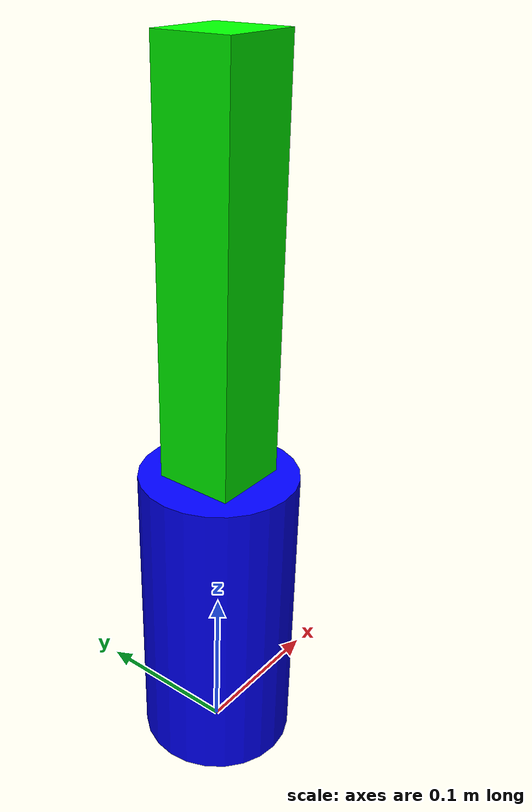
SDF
<?xml version="1.0" ?>
<sdf version="1.11">
  <model name="my_robot_arm">
    <static>false</static>

    <!-- Base link -->
    <link name="base_link">
      <pose>0 0 0.1 0 0 0</pose>
      <visual name="base_visual">
        <geometry>
          <cylinder>
            <radius>0.05</radius>
            <length>0.2</length>
          </cylinder>
        </geometry>
        <material>
          <ambient>0 0 1 1</ambient>
          <diffuse>0 0 1 1</diffuse>
        </material>
      </visual>
      <collision name="base_collision">
        <geometry>
          <cylinder>
            <radius>0.05</radius>
            <length>0.2</length>
          </cylinder>
        </geometry>
      </collision>
    </link>

    <!-- Upper link -->
    <link name="link1">
      <pose>0 0 0.3 0 0 0</pose>
      <visual name="link1_visual">
        <geometry>
          <box>
            <size>0.05 0.05 0.3</size>
          </box>
        </geometry>
        <material>
          <ambient>0 1 0 1</ambient>
          <diffuse>0 1 0 1</diffuse>
        </material>
      </visual>
      <collision name="link1_collision">
        <geometry>
          <box>
            <size>0.05 0.05 0.3</size>
          </box>
        </geometry>
      </collision>
    </link>

    <!-- Joint -->
    <joint name="joint1" type="revolute">
      <parent>base_link</parent>
      <child>link1</child>
      <pose>0 0 0.2 0 0 0</pose>
      <axis>
        <xyz>0 0 1</xyz>
        <limit>
          <lower>-1.57</lower>
          <upper>1.57</upper>
        </limit>
      </axis>
    </joint>

  </model>
</sdf>
